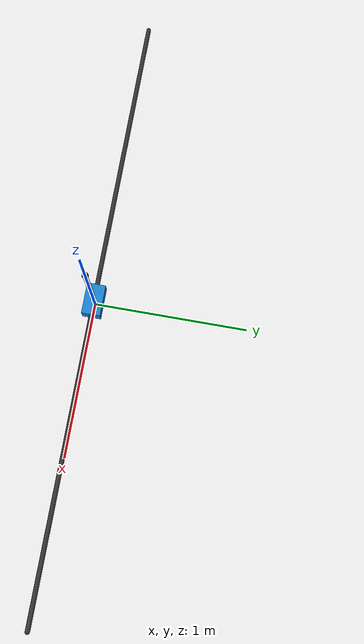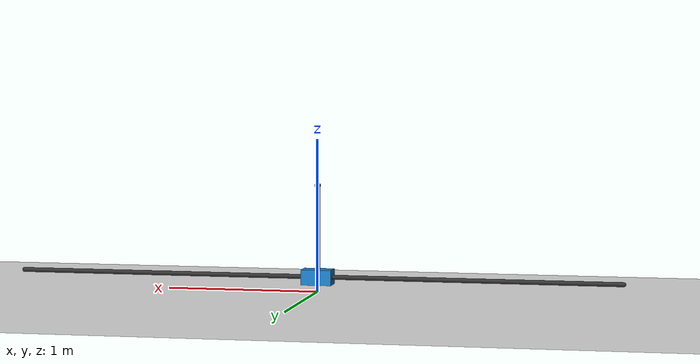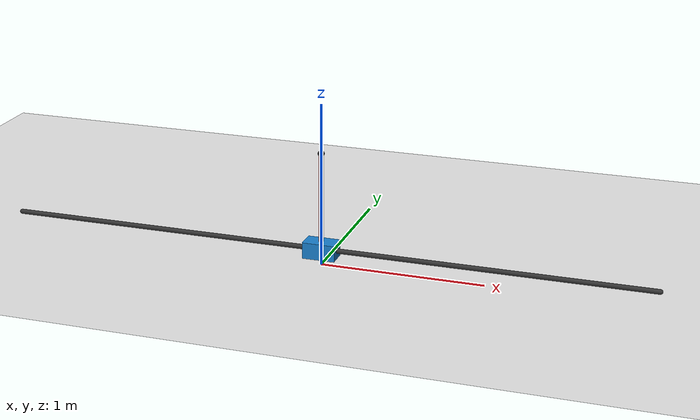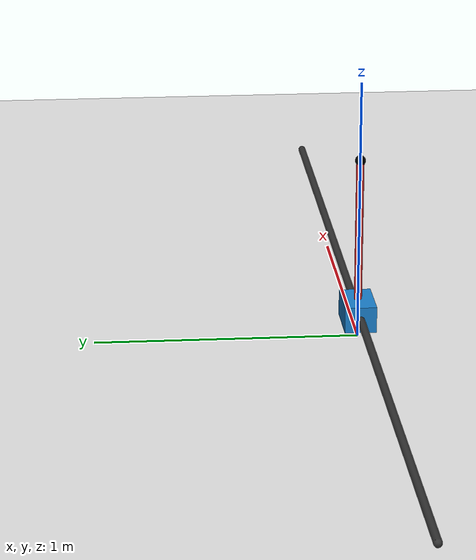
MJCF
<mujoco model="inverted_pendulum">

    <compiler angle="radian" coordinate="local"/>
    <option timestep="0.002" gravity="0 0 -9.81" integrator="Euler"/>
    <default>
        <joint damping="0.0" armature="0.0"/>
        <geom friction="0.0 0.0 0.0" rgba="0.7 0.7 0.7 1"/>
        <motor ctrllimited="true" ctrlrange="-100 100"/>
    </default>

    <worldbody>
        <light pos="0 0 3" dir="0 0 -1"/>

        <!-- ground -->
        <geom name="ground" type="plane" pos="0 0 0" size="5 5 0.1" rgba="0.9 0.9 0.9 1"/>

        <!-- rail -->
        <geom name="rail" type="capsule"
              fromto="-2 0 0.1  2 0 0.1"
              size="0.015"
              rgba="0.2 0.2 0.2 1"/>

        <!-- cart -->
        <body name="cart" pos="0 0 0.1">
            <inertial pos="0 0 0" mass="0.5" diaginertia="0.002 0.002 0.002"/>

            <joint name="slider"
                   type="slide"
                   axis="1 0 0"
                   limited="true"
                   range="-1.5 1.5"
                   damping="0.05"/>

            <geom name="cart_geom"
                  type="box"
                  size="0.10 0.06 0.05"
                  rgba="0.1 0.5 0.8 1"/>

            <!-- pole -->
            <body name="pole" pos="0 0 0">
                <!-- COM ở giữa thanh: z = 0.3 -->
                <inertial pos="0 0 0.3" mass="0.2" diaginertia="0.006 0.006 0.0001"/>

                <!-- quay quanh trục y, theta=0 là thanh hướng lên +z -->
                <joint name="hinge"
                       type="hinge"
                       axis="0 1 0"
                       damping="0.001"/>

                <geom name="pole_geom"
                      type="capsule"
                      fromto="0 0 0   0 0 0.6"
                      size="0.015"
                      rgba="0.85 0.2 0.2 1"/>

                <site name="tip" pos="0 0 0.6" size="0.02" rgba="0 0 0 1"/>
            </body>
        </body>
    </worldbody>

    <actuator>
        <motor name="cart_force" joint="slider" gear="50"/>
    </actuator>

</mujoco>
